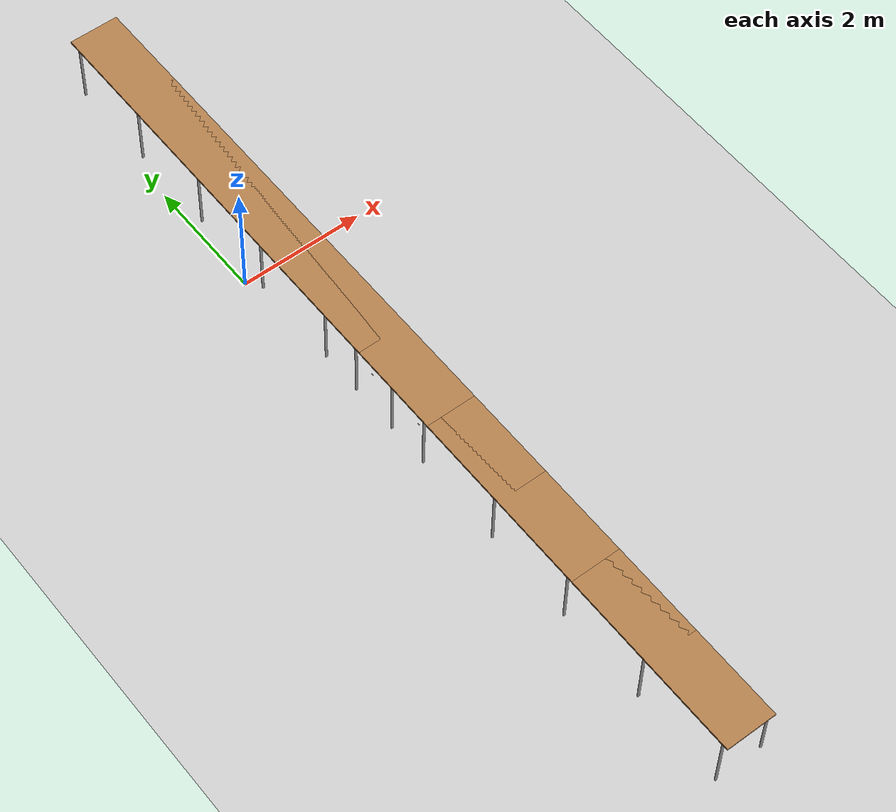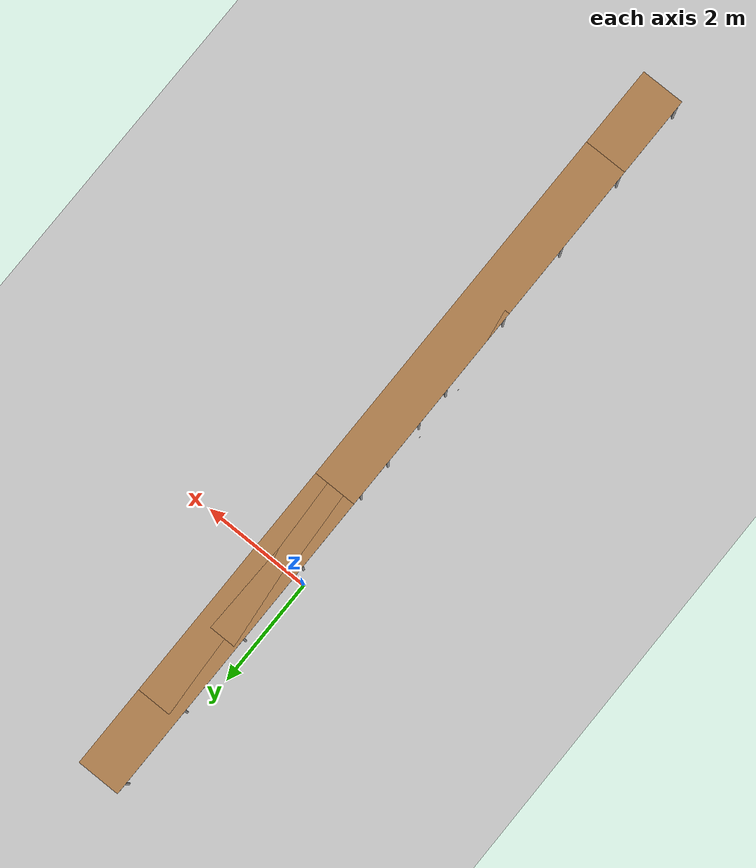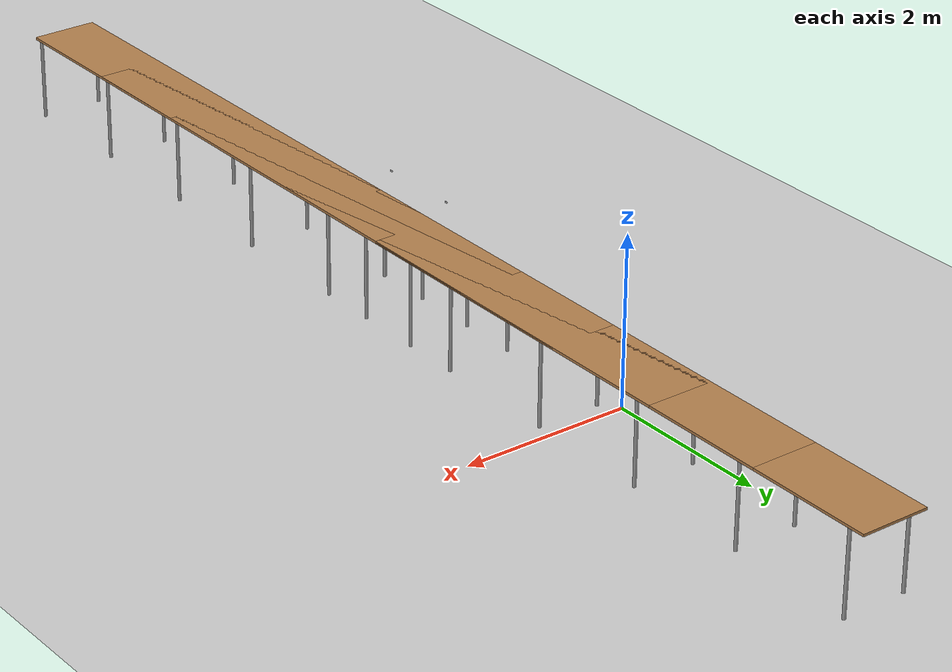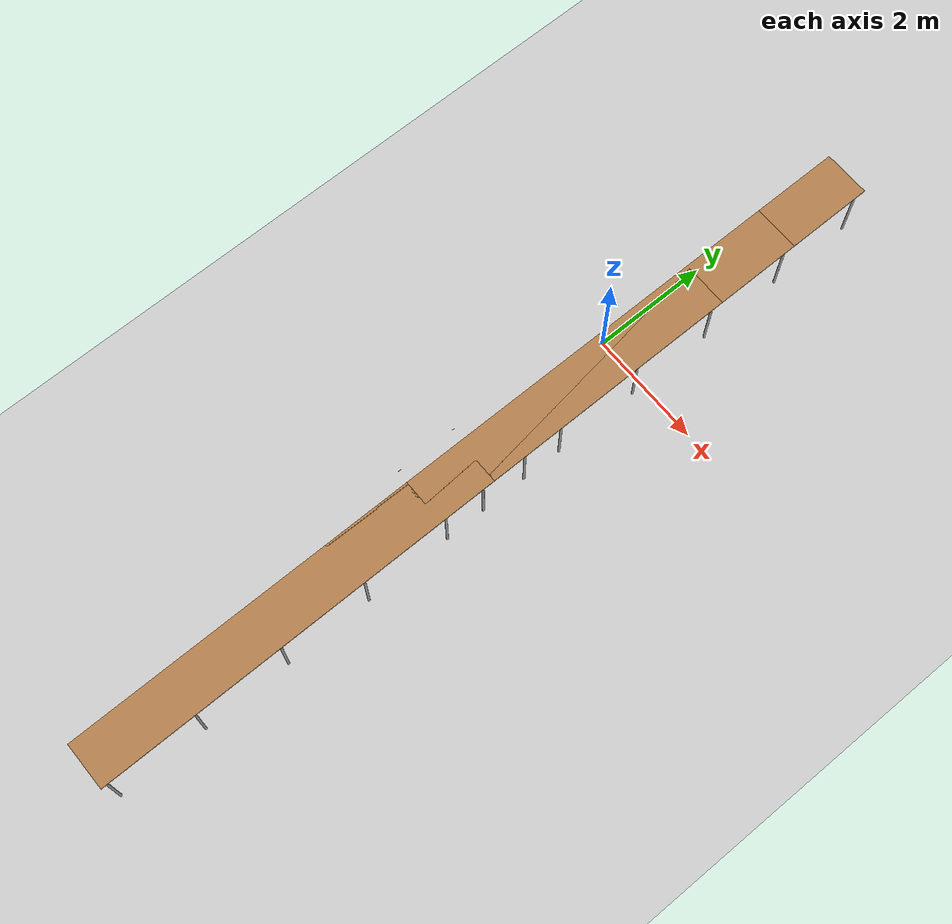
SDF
<sdf version="1.5">
 <world name="default">
  <include><uri>model://ground_plane</uri></include>
  <include><uri>model://sun</uri></include>
  <model name="table_model">
   <pose>0.55 0 0 0 0 1.570796</pose>
   <include><uri>model://table</uri></include>
  </model>
  <model name="table_model2">
   <pose>0.55 1.5 0 0 0 1.570796</pose>
   <include><uri>model://table</uri></include>
  </model>
  <model name="table_model3">
   <pose>0.55 -1.5 0 0 0 1.570796</pose>
   <include><uri>model://table</uri></include>
  </model>
  <model name="table_model4">
   <pose>0.55 -3 0 0 0 1.570796</pose>
   <include><uri>model://table</uri></include>
  </model>
  <model name="table_model5">
   <pose>0.55 3 0 0 0 1.570796</pose>
   <include><uri>model://table</uri></include>
  </model>
  <model name="table_model6">
   <pose>0.55 -4.5 0 0 0 1.570796</pose>
   <include><uri>model://table</uri></include>
  </model>
  <model name="lidar_model">
   <pose>0.55 0 0.95 0 0 0</pose>
   <include><uri>model://lidar_model</uri></include>
  </model>
  <model name="ultrasonic1"><pose>0 -4 1.2 0 0 0</pose><include><uri>model://hcsr04</uri></include></model>
  <model name="ultrasonic2"><pose>0 -3 1.2 0 0 0</pose><include><uri>model://hcsr04</uri></include></model>
  <physics type="ode">
   <gravity>0.000000 0.000000 -9.810000</gravity>
   <max_step_size>0.01</max_step_size>
   <real_time_factor>1</real_time_factor>
   <real_time_update_rate>100</real_time_update_rate>
   <ode>
    <solver><type>quick</type><iters>100</iters><precon_iters>0</precon_iters><sor>1.000000</sor></solver>
    <constraints>
     <cfm>0.000000</cfm>
     <erp>0.500000</erp>
     <contact_max_correcting_vel>1000.000000</contact_max_correcting_vel>
     <contact_surface_layer>0.00000</contact_surface_layer>
    </constraints>
   </ode>
  </physics>
 </world>
</sdf>

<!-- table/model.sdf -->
<sdf version="1.5">
  <model name="table">
    <static>true</static>
    <link name="link">
      <collision name="surface">
        <pose>-2 0 1.0 0 0 0</pose>
        <geometry>
          <box>
            <size>7.0 0.8 0.03</size>
          </box>
        </geometry>
        <surface>
          <friction>
            <ode>
              <mu>0.6</mu>
              <mu2>0.6</mu2>
            </ode>
          </friction>
        </surface>
      </collision>
      <visual name="visual1">
        <pose>-2 0 1.0 0 0 0</pose>
        <geometry>
          <box>
            <size>7.0 0.8 0.03</size>
          </box>
        </geometry>
        <material>
          <script>
            <uri>file://media/materials/scripts/gazebo.material</uri>
            <name>Gazebo/Wood</name>
          </script>
        </material>
      </visual>
      <collision name="front_left_leg">
        <pose>-5.4 0.38 0.5 0 0 0</pose>
        <geometry>
          <cylinder>
            <radius>0.02</radius>
            <length>1.0</length>
          </cylinder>
        </geometry>
      </collision>
      <visual name="front_left_leg">
        <pose>-5.4 0.38 0.5 0 0 0</pose>
        <geometry>
          <cylinder>
            <radius>0.02</radius>
            <length>1.0</length>
          </cylinder>
        </geometry>
        <material>
          <script>
            <uri>file://media/materials/scripts/gazebo.material</uri>
            <name>Gazebo/Grey</name>
          </script>
        </material>
      </visual>
      <collision name="front_right_leg">
        <pose>-5.4 -0.38 0.5 0 0 0</pose>
        <geometry>
          <cylinder>
            <radius>0.02</radius>
            <length>1.0</length>
          </cylinder>
        </geometry>
      </collision>
      <visual name="front_right_leg">
        <pose>-5.4 -0.38 0.5 0 0 0</pose>
        <geometry>
          <cylinder>
            <radius>0.02</radius>
            <length>1.0</length>
          </cylinder>
        </geometry>
        <material>
          <script>
            <uri>file://media/materials/scripts/gazebo.material</uri>
            <name>Gazebo/Grey</name>
          </script>
        </material>
      </visual>
      <collision name="back_right_leg">
        <pose>1.3 -0.38 0.5 0 0 0</pose>
        <geometry>
          <cylinder>
            <radius>0.02</radius>
            <length>1.0</length>
          </cylinder>
        </geometry>
      </collision>
      <visual name="back_right_leg">
        <pose>1.3 -0.38 0.5 0 0 0</pose>
        <geometry>
          <cylinder>
            <radius>0.02</radius>
            <length>1.0</length>
          </cylinder>
        </geometry>
        <material>
          <script>
            <uri>file://media/materials/scripts/gazebo.material</uri>
            <name>Gazebo/Grey</name>
          </script>
        </material>
      </visual>
      <collision name="back_left_leg">
        <pose>1.3 0.38 0.5 0 0 0</pose>
        <geometry>
          <cylinder>
            <radius>0.02</radius>
            <length>1.0</length>
          </cylinder>
        </geometry>
      </collision>
      <visual name="back_left_leg">
        <pose>1.3 0.38 0.5 0 0 0</pose>
        <geometry>
          <cylinder>
            <radius>0.02</radius>
            <length>1.0</length>
          </cylinder>
        </geometry>
        <material>
          <script>
            <uri>file://media/materials/scripts/gazebo.material</uri>
            <name>Gazebo/Grey</name>
          </script>
        </material>
      </visual>
    </link>
  </model>
</sdf>

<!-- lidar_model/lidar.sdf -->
<sdf version="1.6">
<model name="lidar">
	<static>true</static>
	<link name="lidar_link">
		<pose>0 0 0.02 0 0 0</pose>
      	<collision name="base_collision">
			<geometry>
				<cylinder>
					<radius>0.036285</radius>
					<length>0.04</length>
				</cylinder>
			</geometry>
      	</collision>

		<visual name="base_visual">
			<geometry>
				<cylinder>
					<radius>0.036285</radius>
					<length>0.04</length>
				</cylinder>
			</geometry>
		</visual>

		<sensor type="ray" name="sensor">
			<pose>0 0 -0.004645 0 0 0</pose>
			<visualize>true</visualize>
			<update_rate>10</update_rate>
			<ray>
				<scan>
					<horizontal>
						<samples>360</samples>
						<resolution>1</resolution>
						<min_angle>-3.141592</min_angle>
						<max_angle>3.141592</max_angle>
					</horizontal>
					<vertical>
						<samples>1</samples>
						<resolution>1</resolution>
						<min_angle>0</min_angle>
						<max_angle>-0.1</max_angle>
					</vertical>
				</scan>
				<range>
					<min>0.2</min>
					<max>18</max>
					<resolution>0.02</resolution>
				</range>
			</ray>
			<plugin name="lidar_control" filename="libsim_lidar_plugin.so">
				<topicName>/sensor/lidar/scan</topicName>
				<frameName>laser</frameName>
			</plugin>
		</sensor>
	</link>
</model>
</sdf>

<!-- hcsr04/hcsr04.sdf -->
<sdf version="1.5">
    <model name="hcsr04">
        <pose>0 0 0 0 0 0</pose>
        <static>true</static>
        <link name="hcsr04_link">
            <pose>0 0 0 0 0 0</pose>
            <gravity>false</gravity>
            <visual name="hcsr04_visual">
                <geometry>
                    <box>
                        <size>0.0015 0.045 0.02</size>
                    </box>
                </geometry>
            </visual>
            <collision name="hcsr04_collision">
                <geometry>
                    <box>
                        <size>0.0015 0.045 0.02</size>
                    </box>
                </geometry>
            </collision>
            <sensor name="hcsr04-sensor" type="sonar">
                <plugin name="hcsr04_sensor_plugin_plugin" filename="libsim_sonar_plugin.so">
                    <fov>0.05</fov>
                    <robotNamespace></robotNamespace>
                    <frameName>/hcsr04</frameName>
                    <topicName>/sensor/sonar</topicName>
                </plugin>
                <pose>0 0 0 0 -1.5707 0</pose>
                <sonar>
                    <min>0.02</min>
                    <max>2.00</max>
                    <radius>0.02</radius>
                </sonar>
                <always_on>1</always_on>
                <update_rate>30</update_rate>
                <visualize>true</visualize>
            </sensor>
        </link>

    </model>
</sdf>
